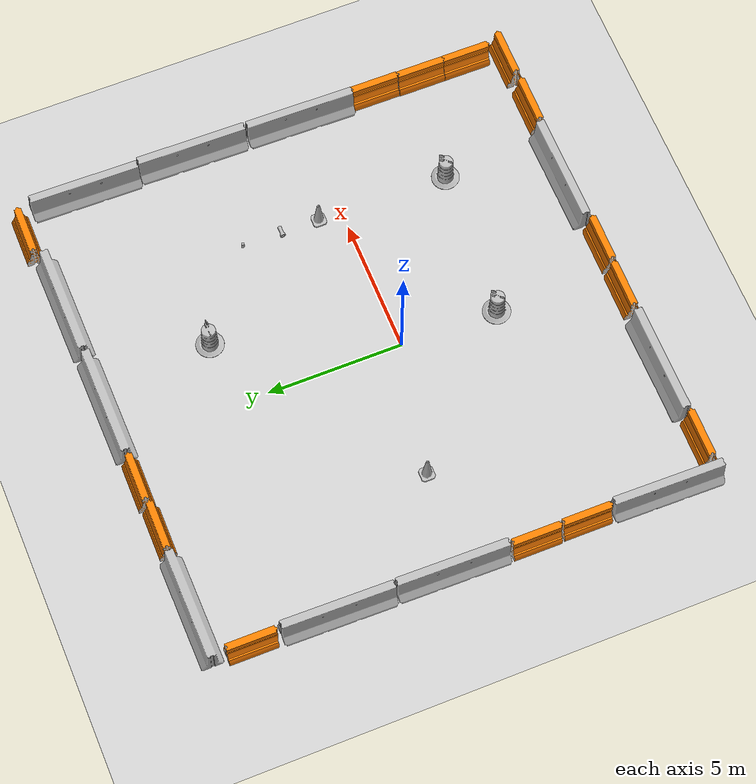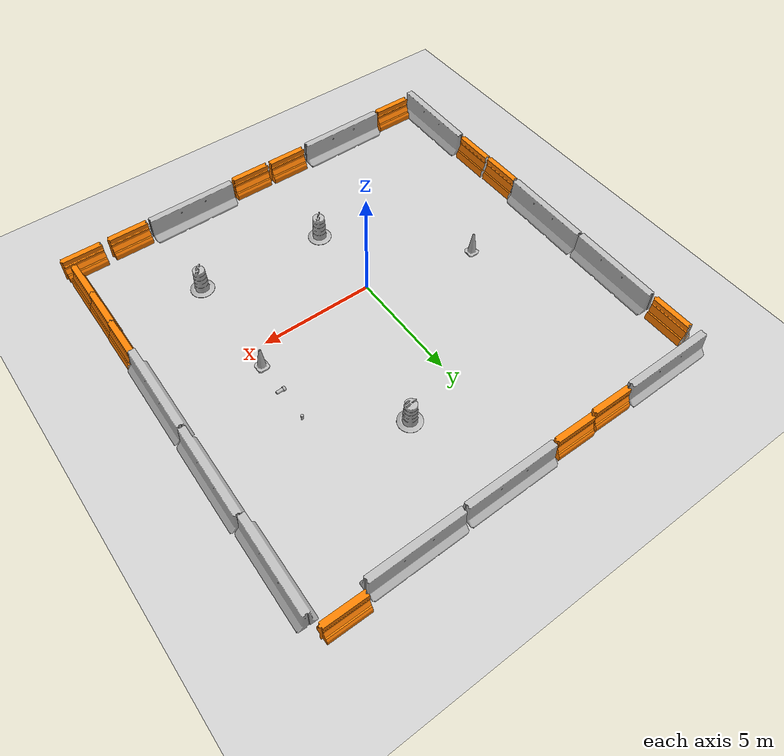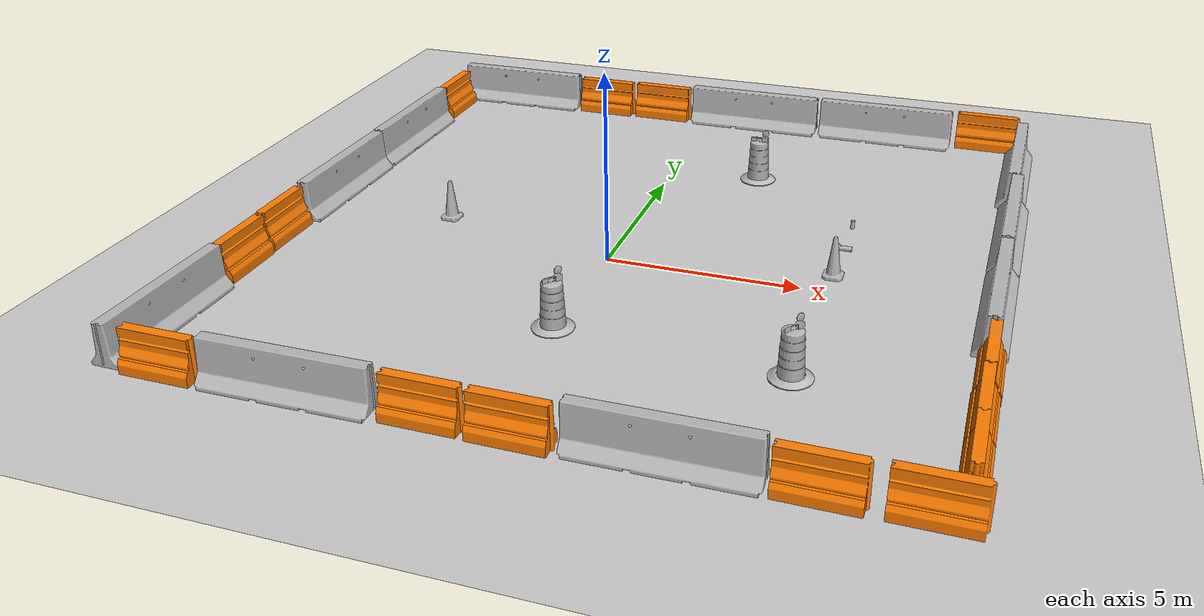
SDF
<sdf version="1.7">
 <world name="default">
  <light name="sun" type="directional">
   <pose>0 0 10 0 -0 0</pose>
   <diffuse>0.8 0.8 0.8 1</diffuse>
   <specular>0.1 0.1 0.1 1</specular>
   <attenuation>
    <range>1000</range>
    <constant>0.9</constant>
    <linear>0.01</linear>
    <quadratic>0.001</quadratic>
   </attenuation>
   <direction>0.1 -0.3 -1</direction>
   <spot><inner_angle>0</inner_angle><outer_angle>0</outer_angle><falloff>0</falloff></spot>
  </light>
  <model name="ground_plane">
   <static>1</static>
   <link name="link">
    <collision name="collision">
     <geometry><plane><normal>0 0 1</normal><size>100 100</size></plane></geometry>
     <surface><friction><ode><mu>100</mu><mu2>50</mu2></ode></friction></surface>
    </collision>
    <visual name="visual">
     <cast_shadows>0</cast_shadows>
     <geometry><plane><normal>0 0 1</normal><size>100 100</size></plane></geometry>
     <material>
      <script><uri>file://media/materials/scripts/gazebo.material</uri><name>Gazebo/Grey</name></script>
     </material>
    </visual>
   </link>
  </model>
  <gravity>0 0 -9.8</gravity>
  <magnetic_field>6e-06 2.3e-05 -4.2e-05</magnetic_field>
  <atmosphere type="adiabatic"/>
  <physics name="default_physics" default="0" type="ode">
   <max_step_size>0.001</max_step_size>
   <real_time_factor>1</real_time_factor>
   <real_time_update_rate>1000</real_time_update_rate>
  </physics>
  <scene><ambient>0.4 0.4 0.4 1</ambient><background>0.7 0.7 0.7 1</background><shadows>1</shadows></scene>
  <spherical_coordinates>
   <surface_model>EARTH_WGS84</surface_model>
   <latitude_deg>0</latitude_deg>
   <longitude_deg>0</longitude_deg>
   <elevation>0</elevation>
   <heading_deg>0</heading_deg>
  </spherical_coordinates>
  <model name="Construction Barrel">
   <link name="link">
    <inertial>
     <pose>0 0 0.4 0 -0 0</pose>
     <mass>500</mass>
     <inertia><ixx>51.2096</ixx><iyy>51.2096</iyy><izz>25</izz><ixy>0</ixy><ixz>0</ixz><iyz>0</iyz></inertia>
    </inertial>
    <collision name="collision">
     <geometry><mesh><uri>model://construction_barrel/meshes/construction_barrel.dae</uri></mesh></geometry>
    </collision>
    <visual name="visual">
     <geometry><mesh><uri>model://construction_barrel/meshes/construction_barrel.dae</uri></mesh></geometry>
    </visual>
   </link>
   <pose>2.50816 6.21769 -0 0 -0 -4e-06</pose>
  </model>
  <model name="jersey_barrier_clone">
   <static>1</static>
   <link name="link">
    <visual name="visual">
     <geometry><mesh><uri>model://jersey_barrier/meshes/jersey_barrier.dae</uri></mesh></geometry>
    </visual>
    <collision name="upright">
     <pose>0 0 0.5715 0 -0 0</pose>
     <geometry><box><size>4.06542 0.3063 1.143</size></box></geometry>
    </collision>
    <collision name="base">
     <pose>0 0 0.032258 0 -0 0</pose>
     <geometry><box><size>4.06542 0.8107 0.064516</size></box></geometry>
    </collision>
    <collision name="base2">
     <pose>0 0 0.1 0 -0 0</pose>
     <geometry><box><size>4.06542 0.65 0.1</size></box></geometry>
    </collision>
    <collision name="base3">
     <pose>0 0 0.2 0 -0 0</pose>
     <geometry><box><size>4.06542 0.5 0.1</size></box></geometry>
    </collision>
    <collision name="left-angle">
     <pose>0 -0.224 0.2401 0.9 -0 0</pose>
     <geometry><box><size>4.06542 0.5 0.064516</size></box></geometry>
    </collision>
    <collision name="right-angle">
     <pose>0 0.224 0.2401 -0.9 0 0</pose>
     <geometry><box><size>4.06542 0.5 0.064516</size></box></geometry>
    </collision>
   </link>
   <pose>9.70602 4.18121 0 0 -0 1.55298</pose>
  </model>
  <model name="jersey_barrier_clone_clone">
   <static>1</static>
   <link name="link">
    <visual name="visual">
     <geometry><mesh><uri>model://jersey_barrier/meshes/jersey_barrier.dae</uri></mesh></geometry>
    </visual>
    <collision name="upright">
     <pose>0 0 0.5715 0 -0 0</pose>
     <geometry><box><size>4.06542 0.3063 1.143</size></box></geometry>
    </collision>
    <collision name="base">
     <pose>0 0 0.032258 0 -0 0</pose>
     <geometry><box><size>4.06542 0.8107 0.064516</size></box></geometry>
    </collision>
    <collision name="base2">
     <pose>0 0 0.1 0 -0 0</pose>
     <geometry><box><size>4.06542 0.65 0.1</size></box></geometry>
    </collision>
    <collision name="base3">
     <pose>0 0 0.2 0 -0 0</pose>
     <geometry><box><size>4.06542 0.5 0.1</size></box></geometry>
    </collision>
    <collision name="left-angle">
     <pose>0 -0.224 0.2401 0.9 -0 0</pose>
     <geometry><box><size>4.06542 0.5 0.064516</size></box></geometry>
    </collision>
    <collision name="right-angle">
     <pose>0 0.224 0.2401 -0.9 0 0</pose>
     <geometry><box><size>4.06542 0.5 0.064516</size></box></geometry>
    </collision>
   </link>
   <pose>9.6801 8.27017 0 0 -0 1.55298</pose>
  </model>
  <model name="jersey_barrier_clone_clone_0">
   <static>1</static>
   <link name="link">
    <visual name="visual">
     <geometry><mesh><uri>model://jersey_barrier/meshes/jersey_barrier.dae</uri></mesh></geometry>
    </visual>
    <collision name="upright">
     <pose>0 0 0.5715 0 -0 0</pose>
     <geometry><box><size>4.06542 0.3063 1.143</size></box></geometry>
    </collision>
    <collision name="base">
     <pose>0 0 0.032258 0 -0 0</pose>
     <geometry><box><size>4.06542 0.8107 0.064516</size></box></geometry>
    </collision>
    <collision name="base2">
     <pose>0 0 0.1 0 -0 0</pose>
     <geometry><box><size>4.06542 0.65 0.1</size></box></geometry>
    </collision>
    <collision name="base3">
     <pose>0 0 0.2 0 -0 0</pose>
     <geometry><box><size>4.06542 0.5 0.1</size></box></geometry>
    </collision>
    <collision name="left-angle">
     <pose>0 -0.224 0.2401 0.9 -0 0</pose>
     <geometry><box><size>4.06542 0.5 0.064516</size></box></geometry>
    </collision>
    <collision name="right-angle">
     <pose>0 0.224 0.2401 -0.9 0 0</pose>
     <geometry><box><size>4.06542 0.5 0.064516</size></box></geometry>
    </collision>
   </link>
   <pose>9.63141 0.04135 0 0 -0 1.55298</pose>
  </model>
  <model name="drc_practice_organge_jersey_barrier_clone_0">
   <static>1</static>
   <link name="link">
    <visual name="visual">
     <geometry>
      <mesh><uri>model://drc_practice_orange_jersey_barrier/meshes/jersey_barrier.dae</uri></mesh>
     </geometry>
    </visual>
    <collision name="collision">
     <geometry>
      <mesh><uri>model://drc_practice_orange_jersey_barrier/meshes/jersey_barrier.dae</uri></mesh>
     </geometry>
    </collision>
   </link>
   <pose>9.64213 -2.86533 0 0 -0 0</pose>
  </model>
  <model name="drc_practice_organge_jersey_barrier_clone_1">
   <static>1</static>
   <link name="link">
    <visual name="visual">
     <geometry>
      <mesh><uri>model://drc_practice_orange_jersey_barrier/meshes/jersey_barrier.dae</uri></mesh>
     </geometry>
    </visual>
    <collision name="collision">
     <geometry>
      <mesh><uri>model://drc_practice_orange_jersey_barrier/meshes/jersey_barrier.dae</uri></mesh>
     </geometry>
    </collision>
   </link>
   <pose>9.61281 -4.65775 0 0 -0 0</pose>
  </model>
  <model name="drc_practice_organge_jersey_barrier_clone_2">
   <static>1</static>
   <link name="link">
    <visual name="visual">
     <geometry>
      <mesh><uri>model://drc_practice_orange_jersey_barrier/meshes/jersey_barrier.dae</uri></mesh>
     </geometry>
    </visual>
    <collision name="collision">
     <geometry>
      <mesh><uri>model://drc_practice_orange_jersey_barrier/meshes/jersey_barrier.dae</uri></mesh>
     </geometry>
    </collision>
   </link>
   <pose>9.60628 -6.43436 0 0 -0 0</pose>
  </model>
  <model name="drc_practice_organge_jersey_barrier_clone_clone_clone_clone_0_clone_1_clone">
   <static>1</static>
   <link name="link">
    <visual name="visual">
     <geometry>
      <mesh><uri>model://drc_practice_orange_jersey_barrier/meshes/jersey_barrier.dae</uri></mesh>
     </geometry>
    </visual>
    <collision name="collision">
     <geometry>
      <mesh><uri>model://drc_practice_orange_jersey_barrier/meshes/jersey_barrier.dae</uri></mesh>
     </geometry>
    </collision>
   </link>
   <pose>9.02715 -7.83784 0 0 -0 1.56758</pose>
  </model>
  <model name="drc_practice_organge_jersey_barrier_clone_clone_clone_clone_0_clone_1_clone_0">
   <static>1</static>
   <link name="link">
    <visual name="visual">
     <geometry>
      <mesh><uri>model://drc_practice_orange_jersey_barrier/meshes/jersey_barrier.dae</uri></mesh>
     </geometry>
    </visual>
    <collision name="collision">
     <geometry>
      <mesh><uri>model://drc_practice_orange_jersey_barrier/meshes/jersey_barrier.dae</uri></mesh>
     </geometry>
    </collision>
   </link>
   <pose>6.89713 -7.86174 0 0 -0 1.56758</pose>
  </model>
  <model name="jersey_barrier_clone_clone_0_clone_clone">
   <static>1</static>
   <link name="link">
    <visual name="visual">
     <geometry><mesh><uri>model://jersey_barrier/meshes/jersey_barrier.dae</uri></mesh></geometry>
    </visual>
    <collision name="upright">
     <pose>0 0 0.5715 0 -0 0</pose>
     <geometry><box><size>4.06542 0.3063 1.143</size></box></geometry>
    </collision>
    <collision name="base">
     <pose>0 0 0.032258 0 -0 0</pose>
     <geometry><box><size>4.06542 0.8107 0.064516</size></box></geometry>
    </collision>
    <collision name="base2">
     <pose>0 0 0.1 0 -0 0</pose>
     <geometry><box><size>4.06542 0.65 0.1</size></box></geometry>
    </collision>
    <collision name="base3">
     <pose>0 0 0.2 0 -0 0</pose>
     <geometry><box><size>4.06542 0.5 0.1</size></box></geometry>
    </collision>
    <collision name="left-angle">
     <pose>0 -0.224 0.2401 0.9 -0 0</pose>
     <geometry><box><size>4.06542 0.5 0.064516</size></box></geometry>
    </collision>
    <collision name="right-angle">
     <pose>0 0.224 0.2401 -0.9 0 0</pose>
     <geometry><box><size>4.06542 0.5 0.064516</size></box></geometry>
    </collision>
   </link>
   <pose>3.86783 -7.79995 0 0 0 -3.13618</pose>
  </model>
  <model name="drc_practice_organge_jersey_barrier_clone_clone_clone_clone_0_clone_1">
   <static>1</static>
   <link name="link">
    <visual name="visual">
     <geometry>
      <mesh><uri>model://drc_practice_orange_jersey_barrier/meshes/jersey_barrier.dae</uri></mesh>
     </geometry>
    </visual>
    <collision name="collision">
     <geometry>
      <mesh><uri>model://drc_practice_orange_jersey_barrier/meshes/jersey_barrier.dae</uri></mesh>
     </geometry>
    </collision>
   </link>
   <pose>0.77455 -7.96897 0 0 -0 1.56758</pose>
  </model>
  <model name="drc_practice_organge_jersey_barrier_clone_clone_clone_clone_0_clone_2">
   <static>1</static>
   <link name="link">
    <visual name="visual">
     <geometry>
      <mesh><uri>model://drc_practice_orange_jersey_barrier/meshes/jersey_barrier.dae</uri></mesh>
     </geometry>
    </visual>
    <collision name="collision">
     <geometry>
      <mesh><uri>model://drc_practice_orange_jersey_barrier/meshes/jersey_barrier.dae</uri></mesh>
     </geometry>
    </collision>
   </link>
   <pose>-1.16618 -7.9344 0 0 -0 1.56758</pose>
  </model>
  <model name="jersey_barrier_clone_clone_0_clone_clone_0">
   <static>1</static>
   <link name="link">
    <visual name="visual">
     <geometry><mesh><uri>model://jersey_barrier/meshes/jersey_barrier.dae</uri></mesh></geometry>
    </visual>
    <collision name="upright">
     <pose>0 0 0.5715 0 -0 0</pose>
     <geometry><box><size>4.06542 0.3063 1.143</size></box></geometry>
    </collision>
    <collision name="base">
     <pose>0 0 0.032258 0 -0 0</pose>
     <geometry><box><size>4.06542 0.8107 0.064516</size></box></geometry>
    </collision>
    <collision name="base2">
     <pose>0 0 0.1 0 -0 0</pose>
     <geometry><box><size>4.06542 0.65 0.1</size></box></geometry>
    </collision>
    <collision name="base3">
     <pose>0 0 0.2 0 -0 0</pose>
     <geometry><box><size>4.06542 0.5 0.1</size></box></geometry>
    </collision>
    <collision name="left-angle">
     <pose>0 -0.224 0.2401 0.9 -0 0</pose>
     <geometry><box><size>4.06542 0.5 0.064516</size></box></geometry>
    </collision>
    <collision name="right-angle">
     <pose>0 0.224 0.2401 -0.9 0 0</pose>
     <geometry><box><size>4.06542 0.5 0.064516</size></box></geometry>
    </collision>
   </link>
   <pose>-4.28514 -7.95546 0 0 0 -3.13618</pose>
  </model>
  <model name="drc_practice_organge_jersey_barrier_clone_clone_clone_clone_0_clone_1_clone_1">
   <static>1</static>
   <link name="link">
    <visual name="visual">
     <geometry>
      <mesh><uri>model://drc_practice_orange_jersey_barrier/meshes/jersey_barrier.dae</uri></mesh>
     </geometry>
    </visual>
    <collision name="collision">
     <geometry>
      <mesh><uri>model://drc_practice_orange_jersey_barrier/meshes/jersey_barrier.dae</uri></mesh>
     </geometry>
    </collision>
   </link>
   <pose>-7.33736 -8.05264 0 0 -0 1.56758</pose>
  </model>
  <model name="jersey_barrier_clone_clone_1">
   <static>1</static>
   <link name="link">
    <visual name="visual">
     <geometry><mesh><uri>model://jersey_barrier/meshes/jersey_barrier.dae</uri></mesh></geometry>
    </visual>
    <collision name="upright">
     <pose>0 0 0.5715 0 -0 0</pose>
     <geometry><box><size>4.06542 0.3063 1.143</size></box></geometry>
    </collision>
    <collision name="base">
     <pose>0 0 0.032258 0 -0 0</pose>
     <geometry><box><size>4.06542 0.8107 0.064516</size></box></geometry>
    </collision>
    <collision name="base2">
     <pose>0 0 0.1 0 -0 0</pose>
     <geometry><box><size>4.06542 0.65 0.1</size></box></geometry>
    </collision>
    <collision name="base3">
     <pose>0 0 0.2 0 -0 0</pose>
     <geometry><box><size>4.06542 0.5 0.1</size></box></geometry>
    </collision>
    <collision name="left-angle">
     <pose>0 -0.224 0.2401 0.9 -0 0</pose>
     <geometry><box><size>4.06542 0.5 0.064516</size></box></geometry>
    </collision>
    <collision name="right-angle">
     <pose>0 0.224 0.2401 -0.9 0 0</pose>
     <geometry><box><size>4.06542 0.5 0.064516</size></box></geometry>
    </collision>
   </link>
   <pose>-8.58536 -6.25155 0 0 -0 1.55298</pose>
  </model>
  <model name="drc_practice_organge_jersey_barrier_clone_3">
   <static>1</static>
   <link name="link">
    <visual name="visual">
     <geometry>
      <mesh><uri>model://drc_practice_orange_jersey_barrier/meshes/jersey_barrier.dae</uri></mesh>
     </geometry>
    </visual>
    <collision name="collision">
     <geometry>
      <mesh><uri>model://drc_practice_orange_jersey_barrier/meshes/jersey_barrier.dae</uri></mesh>
     </geometry>
    </collision>
   </link>
   <pose>-8.59339 -3.21732 0 0 -0 0</pose>
  </model>
  <model name="drc_practice_organge_jersey_barrier_clone_4">
   <static>1</static>
   <link name="link">
    <visual name="visual">
     <geometry>
      <mesh><uri>model://drc_practice_orange_jersey_barrier/meshes/jersey_barrier.dae</uri></mesh>
     </geometry>
    </visual>
    <collision name="collision">
     <geometry>
      <mesh><uri>model://drc_practice_orange_jersey_barrier/meshes/jersey_barrier.dae</uri></mesh>
     </geometry>
    </collision>
   </link>
   <pose>-8.62009 -1.349 0 0 -0 0</pose>
  </model>
  <model name="jersey_barrier_clone_clone_1_clone">
   <static>1</static>
   <link name="link">
    <visual name="visual">
     <geometry><mesh><uri>model://jersey_barrier/meshes/jersey_barrier.dae</uri></mesh></geometry>
    </visual>
    <collision name="upright">
     <pose>0 0 0.5715 0 -0 0</pose>
     <geometry><box><size>4.06542 0.3063 1.143</size></box></geometry>
    </collision>
    <collision name="base">
     <pose>0 0 0.032258 0 -0 0</pose>
     <geometry><box><size>4.06542 0.8107 0.064516</size></box></geometry>
    </collision>
    <collision name="base2">
     <pose>0 0 0.1 0 -0 0</pose>
     <geometry><box><size>4.06542 0.65 0.1</size></box></geometry>
    </collision>
    <collision name="base3">
     <pose>0 0 0.2 0 -0 0</pose>
     <geometry><box><size>4.06542 0.5 0.1</size></box></geometry>
    </collision>
    <collision name="left-angle">
     <pose>0 -0.224 0.2401 0.9 -0 0</pose>
     <geometry><box><size>4.06542 0.5 0.064516</size></box></geometry>
    </collision>
    <collision name="right-angle">
     <pose>0 0.224 0.2401 -0.9 0 0</pose>
     <geometry><box><size>4.06542 0.5 0.064516</size></box></geometry>
    </collision>
   </link>
   <pose>-8.52972 1.64971 0 0 -0 1.55298</pose>
  </model>
  <model name="jersey_barrier_clone_clone_1_clone_0">
   <static>1</static>
   <link name="link">
    <visual name="visual">
     <geometry><mesh><uri>model://jersey_barrier/meshes/jersey_barrier.dae</uri></mesh></geometry>
    </visual>
    <collision name="upright">
     <pose>0 0 0.5715 0 -0 0</pose>
     <geometry><box><size>4.06542 0.3063 1.143</size></box></geometry>
    </collision>
    <collision name="base">
     <pose>0 0 0.032258 0 -0 0</pose>
     <geometry><box><size>4.06542 0.8107 0.064516</size></box></geometry>
    </collision>
    <collision name="base2">
     <pose>0 0 0.1 0 -0 0</pose>
     <geometry><box><size>4.06542 0.65 0.1</size></box></geometry>
    </collision>
    <collision name="base3">
     <pose>0 0 0.2 0 -0 0</pose>
     <geometry><box><size>4.06542 0.5 0.1</size></box></geometry>
    </collision>
    <collision name="left-angle">
     <pose>0 -0.224 0.2401 0.9 -0 0</pose>
     <geometry><box><size>4.06542 0.5 0.064516</size></box></geometry>
    </collision>
    <collision name="right-angle">
     <pose>0 0.224 0.2401 -0.9 0 0</pose>
     <geometry><box><size>4.06542 0.5 0.064516</size></box></geometry>
    </collision>
   </link>
   <pose>-8.48763 5.77139 0 0 -0 1.55298</pose>
  </model>
  <model name="drc_practice_organge_jersey_barrier_clone_4_clone">
   <static>1</static>
   <link name="link">
    <visual name="visual">
     <geometry>
      <mesh><uri>model://drc_practice_orange_jersey_barrier/meshes/jersey_barrier.dae</uri></mesh>
     </geometry>
    </visual>
    <collision name="collision">
     <geometry>
      <mesh><uri>model://drc_practice_orange_jersey_barrier/meshes/jersey_barrier.dae</uri></mesh>
     </geometry>
    </collision>
   </link>
   <pose>-8.49167 8.87671 0 0 -0 0</pose>
  </model>
  <model name="jersey_barrier_clone_clone_0_clone_clone_0_clone">
   <static>1</static>
   <link name="link">
    <visual name="visual">
     <geometry><mesh><uri>model://jersey_barrier/meshes/jersey_barrier.dae</uri></mesh></geometry>
    </visual>
    <collision name="upright">
     <pose>0 0 0.5715 0 -0 0</pose>
     <geometry><box><size>4.06542 0.3063 1.143</size></box></geometry>
    </collision>
    <collision name="base">
     <pose>0 0 0.032258 0 -0 0</pose>
     <geometry><box><size>4.06542 0.8107 0.064516</size></box></geometry>
    </collision>
    <collision name="base2">
     <pose>0 0 0.1 0 -0 0</pose>
     <geometry><box><size>4.06542 0.65 0.1</size></box></geometry>
    </collision>
    <collision name="base3">
     <pose>0 0 0.2 0 -0 0</pose>
     <geometry><box><size>4.06542 0.5 0.1</size></box></geometry>
    </collision>
    <collision name="left-angle">
     <pose>0 -0.224 0.2401 0.9 -0 0</pose>
     <geometry><box><size>4.06542 0.5 0.064516</size></box></geometry>
    </collision>
    <collision name="right-angle">
     <pose>0 0.224 0.2401 -0.9 0 0</pose>
     <geometry><box><size>4.06542 0.5 0.064516</size></box></geometry>
    </collision>
   </link>
   <pose>-6.61252 10.2984 0 0 0 -3.13618</pose>
  </model>
  <model name="drc_practice_organge_jersey_barrier_clone_clone_clone_clone_0_clone_2_clone">
   <static>1</static>
   <link name="link">
    <visual name="visual">
     <geometry>
      <mesh><uri>model://drc_practice_orange_jersey_barrier/meshes/jersey_barrier.dae</uri></mesh>
     </geometry>
    </visual>
    <collision name="collision">
     <geometry>
      <mesh><uri>model://drc_practice_orange_jersey_barrier/meshes/jersey_barrier.dae</uri></mesh>
     </geometry>
    </collision>
   </link>
   <pose>-3.58156 10.3182 0 0 -0 1.56758</pose>
  </model>
  <model name="drc_practice_organge_jersey_barrier_clone_clone_clone_clone_0_clone_2_clone_0">
   <static>1</static>
   <link name="link">
    <visual name="visual">
     <geometry>
      <mesh><uri>model://drc_practice_orange_jersey_barrier/meshes/jersey_barrier.dae</uri></mesh>
     </geometry>
    </visual>
    <collision name="collision">
     <geometry>
      <mesh><uri>model://drc_practice_orange_jersey_barrier/meshes/jersey_barrier.dae</uri></mesh>
     </geometry>
    </collision>
   </link>
   <pose>-1.66811 10.3795 0 0 -0 1.56758</pose>
  </model>
  <model name="jersey_barrier_clone_clone_0_clone_clone_0_clone_clone">
   <static>1</static>
   <link name="link">
    <visual name="visual">
     <geometry><mesh><uri>model://jersey_barrier/meshes/jersey_barrier.dae</uri></mesh></geometry>
    </visual>
    <collision name="upright">
     <pose>0 0 0.5715 0 -0 0</pose>
     <geometry><box><size>4.06542 0.3063 1.143</size></box></geometry>
    </collision>
    <collision name="base">
     <pose>0 0 0.032258 0 -0 0</pose>
     <geometry><box><size>4.06542 0.8107 0.064516</size></box></geometry>
    </collision>
    <collision name="base2">
     <pose>0 0 0.1 0 -0 0</pose>
     <geometry><box><size>4.06542 0.65 0.1</size></box></geometry>
    </collision>
    <collision name="base3">
     <pose>0 0 0.2 0 -0 0</pose>
     <geometry><box><size>4.06542 0.5 0.1</size></box></geometry>
    </collision>
    <collision name="left-angle">
     <pose>0 -0.224 0.2401 0.9 -0 0</pose>
     <geometry><box><size>4.06542 0.5 0.064516</size></box></geometry>
    </collision>
    <collision name="right-angle">
     <pose>0 0.224 0.2401 -0.9 0 0</pose>
     <geometry><box><size>4.06542 0.5 0.064516</size></box></geometry>
    </collision>
   </link>
   <pose>1.39935 10.4257 0 0 0 -3.13618</pose>
  </model>
  <model name="jersey_barrier_clone_clone_0_clone_clone_0_clone_clone_0">
   <static>1</static>
   <link name="link">
    <visual name="visual">
     <geometry><mesh><uri>model://jersey_barrier/meshes/jersey_barrier.dae</uri></mesh></geometry>
    </visual>
    <collision name="upright">
     <pose>0 0 0.5715 0 -0 0</pose>
     <geometry><box><size>4.06542 0.3063 1.143</size></box></geometry>
    </collision>
    <collision name="base">
     <pose>0 0 0.032258 0 -0 0</pose>
     <geometry><box><size>4.06542 0.8107 0.064516</size></box></geometry>
    </collision>
    <collision name="base2">
     <pose>0 0 0.1 0 -0 0</pose>
     <geometry><box><size>4.06542 0.65 0.1</size></box></geometry>
    </collision>
    <collision name="base3">
     <pose>0 0 0.2 0 -0 0</pose>
     <geometry><box><size>4.06542 0.5 0.1</size></box></geometry>
    </collision>
    <collision name="left-angle">
     <pose>0 -0.224 0.2401 0.9 -0 0</pose>
     <geometry><box><size>4.06542 0.5 0.064516</size></box></geometry>
    </collision>
    <collision name="right-angle">
     <pose>0 0.224 0.2401 -0.9 0 0</pose>
     <geometry><box><size>4.06542 0.5 0.064516</size></box></geometry>
    </collision>
   </link>
   <pose>5.58905 10.4873 0 0 0 -3.13618</pose>
  </model>
  <model name="drc_practice_organge_jersey_barrier_clone_clone_clone_clone_0_clone_1_clone_0_clone">
   <static>1</static>
   <link name="link">
    <visual name="visual">
     <geometry>
      <mesh><uri>model://drc_practice_orange_jersey_barrier/meshes/jersey_barrier.dae</uri></mesh>
     </geometry>
    </visual>
    <collision name="collision">
     <geometry>
      <mesh><uri>model://drc_practice_orange_jersey_barrier/meshes/jersey_barrier.dae</uri></mesh>
     </geometry>
    </collision>
   </link>
   <pose>8.66292 10.8154 0 0 -0 1.56758</pose>
  </model>
  <model name="Construction Barrel_clone">
   <link name="link">
    <inertial>
     <pose>0 0 0.4 0 -0 0</pose>
     <mass>500</mass>
     <inertia><ixx>51.2096</ixx><iyy>51.2096</iyy><izz>25</izz><ixy>0</ixy><ixz>0</ixz><iyz>0</iyz></inertia>
    </inertial>
    <collision name="collision">
     <geometry><mesh><uri>model://construction_barrel/meshes/construction_barrel.dae</uri></mesh></geometry>
    </collision>
    <visual name="visual">
     <geometry><mesh><uri>model://construction_barrel/meshes/construction_barrel.dae</uri></mesh></geometry>
    </visual>
   </link>
   <pose>5.58692 -3.99966 -0 0 -0 0.85845</pose>
  </model>
  <model name="standpipe_clone_1">
   <static>1</static>
   <link name="standpipe">
    <pose>0 0 0.1 0 1.57078 0</pose>
    <collision name="collision_stopper">
     <pose>0 0 0.22 0 -0 0</pose>
     <geometry><cylinder><radius>0.069</radius><length>0.1</length></cylinder></geometry>
     <surface><friction><ode><mu>0.5</mu><mu2>0.5</mu2></ode></friction></surface>
    </collision>
    <collision name="collision">
     <pose>0 0 0.15 0 -0 0</pose>
     <geometry><mesh><uri>model://standpipe/meshes/standpipe.dae</uri></mesh></geometry>
     <surface><friction><ode><mu>0.5</mu><mu2>0.5</mu2></ode></friction></surface>
    </collision>
    <visual name="visual">
     <pose>0 0 0.15 0 -0 0</pose>
     <geometry><mesh><uri>model://standpipe/meshes/standpipe.dae</uri></mesh></geometry>
    </visual>
   </link>
   <pose>5.34941 2.30088 0 0 -0 0</pose>
  </model>
  <model name="Construction Cone_clone">
   <link name="link">
    <collision name="collision">
     <geometry>
      <mesh><scale>10 10 10</scale><uri>model://construction_cone/meshes/construction_cone.dae</uri></mesh>
     </geometry>
    </collision>
    <visual name="visual">
     <geometry>
      <mesh><scale>10 10 10</scale><uri>model://construction_cone/meshes/construction_cone.dae</uri></mesh>
     </geometry>
    </visual>
    <inertial>
     <inertia><ixx>1</ixx><ixy>0</ixy><ixz>0</ixz><iyy>1</iyy><iyz>0</iyz><izz>1</izz></inertia>
     <mass>1</mass>
    </inertial>
   </link>
   <pose>5.65657 0.87592 -1e-05 -1e-06 0 0</pose>
  </model>
  <model name="beer_clone">
   <link name="link">
    <pose>0 0 0.115 0 -0 0</pose>
    <inertial>
     <mass>0.39</mass>
     <inertia><ixx>0.00058</ixx><ixy>0</ixy><ixz>0</ixz><iyy>0.00058</iyy><iyz>0</iyz><izz>0.00019</izz></inertia>
    </inertial>
    <collision name="collision">
     <geometry><cylinder><radius>0.055</radius><length>0.23</length></cylinder></geometry>
    </collision>
    <visual name="visual">
     <geometry><cylinder><radius>0.055</radius><length>0.23</length></cylinder></geometry>
     <material>
      <script>
       <uri>model://beer/materials/scripts</uri>
       <uri>model://beer/materials/textures</uri>
       <name>Beer/Diffuse</name>
      </script>
     </material>
    </visual>
   </link>
   <pose>5.67994 3.77024 -7e-06 -1e-06 -0 0.0003</pose>
  </model>
  <model name="Construction Barrel_clone_0">
   <link name="link">
    <inertial>
     <pose>0 0 0.4 0 -0 0</pose>
     <mass>500</mass>
     <inertia><ixx>51.2096</ixx><iyy>51.2096</iyy><izz>25</izz><ixy>0</ixy><ixz>0</ixz><iyz>0</iyz></inertia>
    </inertial>
    <collision name="collision">
     <geometry><mesh><uri>model://construction_barrel/meshes/construction_barrel.dae</uri></mesh></geometry>
    </collision>
    <visual name="visual">
     <geometry><mesh><uri>model://construction_barrel/meshes/construction_barrel.dae</uri></mesh></geometry>
    </visual>
   </link>
   <pose>-0.050755 -3.59992 -0 0 -0 0.85845</pose>
  </model>
  <model name="Construction Cone_clone_clone">
   <link name="link">
    <collision name="collision">
     <geometry>
      <mesh><scale>10 10 10</scale><uri>model://construction_cone/meshes/construction_cone.dae</uri></mesh>
     </geometry>
    </collision>
    <visual name="visual">
     <geometry>
      <mesh><scale>10 10 10</scale><uri>model://construction_cone/meshes/construction_cone.dae</uri></mesh>
     </geometry>
    </visual>
    <inertial>
     <inertia><ixx>1</ixx><ixy>0</ixy><ixz>0</ixz><iyy>1</iyy><iyz>0</iyz><izz>1</izz></inertia>
     <mass>1</mass>
    </inertial>
   </link>
   <pose>-4.86825 1.05241 -0 0 -0 0</pose>
  </model>
 </world>
</sdf>
